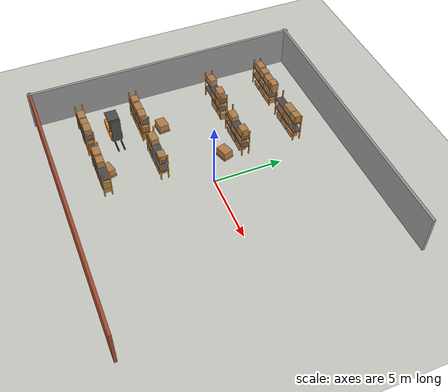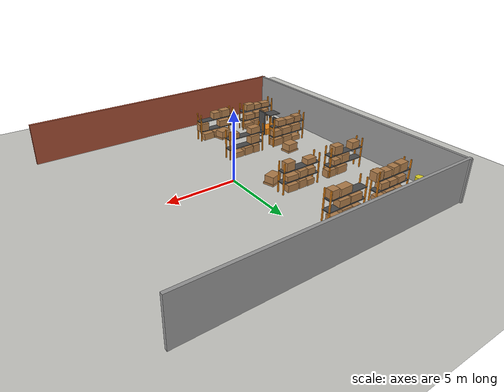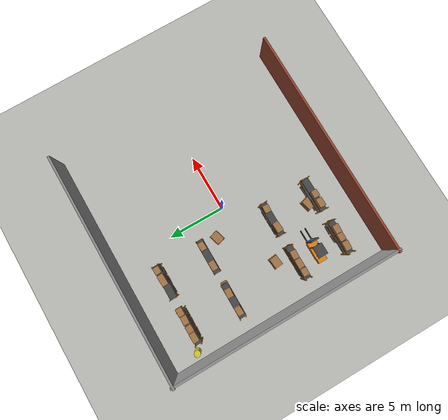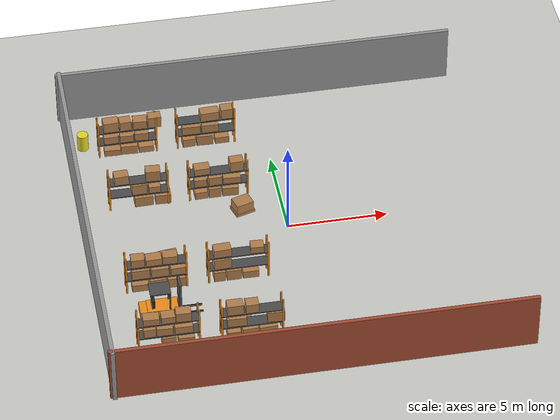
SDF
<sdf version="1.6">
 <world name="warehouse_w4_visually_degraded">
  <model name="ground_plane">
   <static>true</static>
   <link name="link">
    <collision name="collision">
     <geometry><plane><normal>0 0 1</normal><size>25 25</size></plane></geometry>
     <surface><friction><ode><mu>100</mu><mu2>50</mu2></ode></friction></surface>
    </collision>
    <visual name="visual">
     <geometry><plane><normal>0 0 1</normal><size>25 25</size></plane></geometry>
     <material>
      <script><uri>file://media/materials/scripts/gazebo.material</uri><name>Gazebo/CeilingTiled</name></script>
     </material>
    </visual>
   </link>
  </model>
  <model name="wall_north">
   <static>true</static>
   <pose>0 10 1.5 0 0 0</pose>
   <link name="link">
    <collision name="col"><geometry><box><size>20.4 0.2 3.0</size></box></geometry></collision>
    <visual name="vis">
     <geometry><box><size>20.4 0.2 3.0</size></box></geometry>
     <material>
      <script><uri>file://media/materials/scripts/gazebo.material</uri><name>Gazebo/Grey</name></script>
     </material>
    </visual>
   </link>
  </model>
  <model name="wall_south">
   <static>true</static>
   <pose>0 -10 1.5 0 0 0</pose>
   <link name="link">
    <collision name="col"><geometry><box><size>20.4 0.2 3.0</size></box></geometry></collision>
    <visual name="vis">
     <geometry><box><size>20.4 0.2 3.0</size></box></geometry>
     <material>
      <script><uri>file://media/materials/scripts/gazebo.material</uri><name>Gazebo/Bricks</name></script>
     </material>
    </visual>
   </link>
  </model>
  <model name="wall_west">
   <static>true</static>
   <pose>-10 0 1.5 0 0 1.5708</pose>
   <link name="link">
    <collision name="col"><geometry><box><size>20.4 0.2 3.0</size></box></geometry></collision>
    <visual name="vis">
     <geometry><box><size>20.4 0.2 3.0</size></box></geometry>
     <material>
      <script><uri>file://media/materials/scripts/gazebo.material</uri><name>Gazebo/Grey</name></script>
     </material>
    </visual>
   </link>
  </model>
  <model name="rack_r1_a">
   <static>true</static>
   <pose>-7 7 0 0 0 0</pose>
   <link name="link">
    <collision name="col">
     <pose>0 0 1.1 0 0 0</pose>
     <geometry><box><size>3.0 0.6 2.2</size></box></geometry>
    </collision>
    <visual name="up_-1-0">
     <pose>-1.460 -0.260 1.100 0 0 0.000</pose>
     <geometry><box><size>0.080 0.080 2.200</size></box></geometry>
     <material>
      <script><uri>file://media/materials/scripts/gazebo.material</uri><name>Gazebo/Orange</name></script>
     </material>
    </visual>
    <visual name="up_-1+0">
     <pose>-1.460 0.260 1.100 0 0 0.000</pose>
     <geometry><box><size>0.080 0.080 2.200</size></box></geometry>
     <material>
      <script><uri>file://media/materials/scripts/gazebo.material</uri><name>Gazebo/Orange</name></script>
     </material>
    </visual>
    <visual name="up_+1-0">
     <pose>1.460 -0.260 1.100 0 0 0.000</pose>
     <geometry><box><size>0.080 0.080 2.200</size></box></geometry>
     <material>
      <script><uri>file://media/materials/scripts/gazebo.material</uri><name>Gazebo/Orange</name></script>
     </material>
    </visual>
    <visual name="up_+1+0">
     <pose>1.460 0.260 1.100 0 0 0.000</pose>
     <geometry><box><size>0.080 0.080 2.200</size></box></geometry>
     <material>
      <script><uri>file://media/materials/scripts/gazebo.material</uri><name>Gazebo/Orange</name></script>
     </material>
    </visual>
    <visual name="s1">
     <pose>0.000 0.000 0.780 0 0 0.000</pose>
     <geometry><box><size>3.000 0.600 0.060</size></box></geometry>
     <material>
      <script><uri>file://media/materials/scripts/gazebo.material</uri><name>Gazebo/DarkGrey</name></script>
     </material>
    </visual>
    <visual name="s2">
     <pose>0.000 0.000 1.550 0 0 0.000</pose>
     <geometry><box><size>3.000 0.600 0.060</size></box></geometry>
     <material>
      <script><uri>file://media/materials/scripts/gazebo.material</uri><name>Gazebo/DarkGrey</name></script>
     </material>
    </visual>
    <visual name="box_f0">
     <pose>-0.797 0.000 0.178 0 0 -0.033</pose>
     <geometry><box><size>0.806 0.520 0.357</size></box></geometry>
     <material>
      <script><uri>file://media/materials/scripts/gazebo.material</uri><name>Gazebo/WoodPallet</name></script>
     </material>
    </visual>
    <visual name="box_f1">
     <pose>0.077 0.000 0.249 0 0 -0.056</pose>
     <geometry><box><size>0.846 0.520 0.497</size></box></geometry>
     <material>
      <script><uri>file://media/materials/scripts/gazebo.material</uri><name>Gazebo/WoodPallet</name></script>
     </material>
    </visual>
    <visual name="box_f2">
     <pose>0.934 0.000 0.179 0 0 0.018</pose>
     <geometry><box><size>0.752 0.520 0.357</size></box></geometry>
     <material>
      <script><uri>file://media/materials/scripts/gazebo.material</uri><name>Gazebo/WoodPallet</name></script>
     </material>
    </visual>
    <visual name="box_a0">
     <pose>-0.835 0.000 1.023 0 0 0.031</pose>
     <geometry><box><size>0.730 0.520 0.425</size></box></geometry>
     <material>
      <script><uri>file://media/materials/scripts/gazebo.material</uri><name>Gazebo/WoodPallet</name></script>
     </material>
    </visual>
    <visual name="box_a1">
     <pose>-0.031 0.000 1.006 0 0 -0.020</pose>
     <geometry><box><size>0.686 0.520 0.392</size></box></geometry>
     <material>
      <script><uri>file://media/materials/scripts/gazebo.material</uri><name>Gazebo/WoodPallet</name></script>
     </material>
    </visual>
    <visual name="box_a2">
     <pose>0.729 0.000 1.031 0 0 -0.055</pose>
     <geometry><box><size>0.694 0.520 0.443</size></box></geometry>
     <material>
      <script><uri>file://media/materials/scripts/gazebo.material</uri><name>Gazebo/Wood</name></script>
     </material>
    </visual>
    <visual name="box_b0">
     <pose>-0.815 0.000 1.867 0 0 0.043</pose>
     <geometry><box><size>0.771 0.520 0.574</size></box></geometry>
     <material>
      <script><uri>file://media/materials/scripts/gazebo.material</uri><name>Gazebo/WoodPallet</name></script>
     </material>
    </visual>
    <visual name="box_b1">
     <pose>-0.085 0.000 1.844 0 0 0.058</pose>
     <geometry><box><size>0.578 0.520 0.529</size></box></geometry>
     <material>
      <script><uri>file://media/materials/scripts/gazebo.material</uri><name>Gazebo/WoodPallet</name></script>
     </material>
    </visual>
    <visual name="box_b2">
     <pose>0.664 0.000 1.816 0 0 -0.040</pose>
     <geometry><box><size>0.702 0.520 0.472</size></box></geometry>
     <material>
      <script><uri>file://media/materials/scripts/gazebo.material</uri><name>Gazebo/Wood</name></script>
     </material>
    </visual>
    <visual name="box_b3">
     <pose>1.401 0.000 1.881 0 0 0.013</pose>
     <geometry><box><size>0.657 0.520 0.603</size></box></geometry>
     <material>
      <script><uri>file://media/materials/scripts/gazebo.material</uri><name>Gazebo/WoodPallet</name></script>
     </material>
    </visual>
   </link>
  </model>
  <model name="rack_r1_b">
   <static>true</static>
   <pose>-3 7 0 0 0 0</pose>
   <link name="link">
    <collision name="col">
     <pose>0 0 1.1 0 0 0</pose>
     <geometry><box><size>3.0 0.6 2.2</size></box></geometry>
    </collision>
    <visual name="up_-1-0">
     <pose>-1.460 -0.260 1.100 0 0 0.000</pose>
     <geometry><box><size>0.080 0.080 2.200</size></box></geometry>
     <material>
      <script><uri>file://media/materials/scripts/gazebo.material</uri><name>Gazebo/Orange</name></script>
     </material>
    </visual>
    <visual name="up_-1+0">
     <pose>-1.460 0.260 1.100 0 0 0.000</pose>
     <geometry><box><size>0.080 0.080 2.200</size></box></geometry>
     <material>
      <script><uri>file://media/materials/scripts/gazebo.material</uri><name>Gazebo/Orange</name></script>
     </material>
    </visual>
    <visual name="up_+1-0">
     <pose>1.460 -0.260 1.100 0 0 0.000</pose>
     <geometry><box><size>0.080 0.080 2.200</size></box></geometry>
     <material>
      <script><uri>file://media/materials/scripts/gazebo.material</uri><name>Gazebo/Orange</name></script>
     </material>
    </visual>
    <visual name="up_+1+0">
     <pose>1.460 0.260 1.100 0 0 0.000</pose>
     <geometry><box><size>0.080 0.080 2.200</size></box></geometry>
     <material>
      <script><uri>file://media/materials/scripts/gazebo.material</uri><name>Gazebo/Orange</name></script>
     </material>
    </visual>
    <visual name="s1">
     <pose>0.000 0.000 0.780 0 0 0.000</pose>
     <geometry><box><size>3.000 0.600 0.060</size></box></geometry>
     <material>
      <script><uri>file://media/materials/scripts/gazebo.material</uri><name>Gazebo/DarkGrey</name></script>
     </material>
    </visual>
    <visual name="s2">
     <pose>0.000 0.000 1.550 0 0 0.000</pose>
     <geometry><box><size>3.000 0.600 0.060</size></box></geometry>
     <material>
      <script><uri>file://media/materials/scripts/gazebo.material</uri><name>Gazebo/DarkGrey</name></script>
     </material>
    </visual>
    <visual name="box_f0">
     <pose>-0.876 0.000 0.237 0 0 0.051</pose>
     <geometry><box><size>0.648 0.520 0.475</size></box></geometry>
     <material>
      <script><uri>file://media/materials/scripts/gazebo.material</uri><name>Gazebo/WoodPallet</name></script>
     </material>
    </visual>
    <visual name="box_f1">
     <pose>-0.056 0.000 0.289 0 0 -0.033</pose>
     <geometry><box><size>0.824 0.520 0.578</size></box></geometry>
     <material>
      <script><uri>file://media/materials/scripts/gazebo.material</uri><name>Gazebo/WoodPallet</name></script>
     </material>
    </visual>
    <visual name="box_f2">
     <pose>0.816 0.000 0.184 0 0 0.008</pose>
     <geometry><box><size>0.710 0.520 0.368</size></box></geometry>
     <material>
      <script><uri>file://media/materials/scripts/gazebo.material</uri><name>Gazebo/WoodPallet</name></script>
     </material>
    </visual>
    <visual name="box_a0">
     <pose>-0.742 0.000 1.047 0 0 -0.030</pose>
     <geometry><box><size>0.916 0.520 0.474</size></box></geometry>
     <material>
      <script><uri>file://media/materials/scripts/gazebo.material</uri><name>Gazebo/WoodPallet</name></script>
     </material>
    </visual>
    <visual name="box_a1">
     <pose>0.223 0.000 1.043 0 0 -0.017</pose>
     <geometry><box><size>0.849 0.520 0.466</size></box></geometry>
     <material>
      <script><uri>file://media/materials/scripts/gazebo.material</uri><name>Gazebo/WoodPallet</name></script>
     </material>
    </visual>
    <visual name="box_b1">
     <pose>0.212 0.000 1.826 0 0 0.043</pose>
     <geometry><box><size>0.948 0.520 0.493</size></box></geometry>
     <material>
      <script><uri>file://media/materials/scripts/gazebo.material</uri><name>Gazebo/WoodPallet</name></script>
     </material>
    </visual>
    <visual name="box_b2">
     <pose>1.078 0.000 1.874 0 0 0.032</pose>
     <geometry><box><size>0.596 0.520 0.589</size></box></geometry>
     <material>
      <script><uri>file://media/materials/scripts/gazebo.material</uri><name>Gazebo/Wood</name></script>
     </material>
    </visual>
   </link>
  </model>
  <model name="rack_r2_a">
   <static>true</static>
   <pose>-7 3 0 0 0 0</pose>
   <link name="link">
    <collision name="col">
     <pose>0 0 1.1 0 0 0</pose>
     <geometry><box><size>3.0 0.6 2.2</size></box></geometry>
    </collision>
    <visual name="up_-1-0">
     <pose>-1.460 -0.260 1.100 0 0 0.000</pose>
     <geometry><box><size>0.080 0.080 2.200</size></box></geometry>
     <material>
      <script><uri>file://media/materials/scripts/gazebo.material</uri><name>Gazebo/Orange</name></script>
     </material>
    </visual>
    <visual name="up_-1+0">
     <pose>-1.460 0.260 1.100 0 0 0.000</pose>
     <geometry><box><size>0.080 0.080 2.200</size></box></geometry>
     <material>
      <script><uri>file://media/materials/scripts/gazebo.material</uri><name>Gazebo/Orange</name></script>
     </material>
    </visual>
    <visual name="up_+1-0">
     <pose>1.460 -0.260 1.100 0 0 0.000</pose>
     <geometry><box><size>0.080 0.080 2.200</size></box></geometry>
     <material>
      <script><uri>file://media/materials/scripts/gazebo.material</uri><name>Gazebo/Orange</name></script>
     </material>
    </visual>
    <visual name="up_+1+0">
     <pose>1.460 0.260 1.100 0 0 0.000</pose>
     <geometry><box><size>0.080 0.080 2.200</size></box></geometry>
     <material>
      <script><uri>file://media/materials/scripts/gazebo.material</uri><name>Gazebo/Orange</name></script>
     </material>
    </visual>
    <visual name="s1">
     <pose>0.000 0.000 0.780 0 0 0.000</pose>
     <geometry><box><size>3.000 0.600 0.060</size></box></geometry>
     <material>
      <script><uri>file://media/materials/scripts/gazebo.material</uri><name>Gazebo/DarkGrey</name></script>
     </material>
    </visual>
    <visual name="s2">
     <pose>0.000 0.000 1.550 0 0 0.000</pose>
     <geometry><box><size>3.000 0.600 0.060</size></box></geometry>
     <material>
      <script><uri>file://media/materials/scripts/gazebo.material</uri><name>Gazebo/DarkGrey</name></script>
     </material>
    </visual>
    <visual name="box_f1">
     <pose>0.243 0.000 0.281 0 0 0.024</pose>
     <geometry><box><size>0.921 0.520 0.562</size></box></geometry>
     <material>
      <script><uri>file://media/materials/scripts/gazebo.material</uri><name>Gazebo/WoodPallet</name></script>
     </material>
    </visual>
    <visual name="box_f2">
     <pose>1.209 0.000 0.272 0 0 -0.024</pose>
     <geometry><box><size>0.772 0.520 0.544</size></box></geometry>
     <material>
      <script><uri>file://media/materials/scripts/gazebo.material</uri><name>Gazebo/WoodPallet</name></script>
     </material>
    </visual>
    <visual name="box_a1">
     <pose>0.029 0.000 1.100 0 0 0.055</pose>
     <geometry><box><size>0.751 0.520 0.580</size></box></geometry>
     <material>
      <script><uri>file://media/materials/scripts/gazebo.material</uri><name>Gazebo/WoodPallet</name></script>
     </material>
    </visual>
    <visual name="box_a2">
     <pose>0.802 0.000 0.994 0 0 -0.012</pose>
     <geometry><box><size>0.577 0.520 0.368</size></box></geometry>
     <material>
      <script><uri>file://media/materials/scripts/gazebo.material</uri><name>Gazebo/WoodPallet</name></script>
     </material>
    </visual>
    <visual name="box_b0">
     <pose>-0.841 0.000 1.834 0 0 0.052</pose>
     <geometry><box><size>0.718 0.520 0.508</size></box></geometry>
     <material>
      <script><uri>file://media/materials/scripts/gazebo.material</uri><name>Gazebo/WoodPallet</name></script>
     </material>
    </visual>
    <visual name="box_b2">
     <pose>0.745 0.000 1.880 0 0 -0.059</pose>
     <geometry><box><size>0.733 0.520 0.601</size></box></geometry>
     <material>
      <script><uri>file://media/materials/scripts/gazebo.material</uri><name>Gazebo/WoodPallet</name></script>
     </material>
    </visual>
   </link>
  </model>
  <model name="rack_r2_b">
   <static>true</static>
   <pose>-3 3 0 0 0 0</pose>
   <link name="link">
    <collision name="col">
     <pose>0 0 1.1 0 0 0</pose>
     <geometry><box><size>3.0 0.6 2.2</size></box></geometry>
    </collision>
    <visual name="up_-1-0">
     <pose>-1.460 -0.260 1.100 0 0 0.000</pose>
     <geometry><box><size>0.080 0.080 2.200</size></box></geometry>
     <material>
      <script><uri>file://media/materials/scripts/gazebo.material</uri><name>Gazebo/Orange</name></script>
     </material>
    </visual>
    <visual name="up_-1+0">
     <pose>-1.460 0.260 1.100 0 0 0.000</pose>
     <geometry><box><size>0.080 0.080 2.200</size></box></geometry>
     <material>
      <script><uri>file://media/materials/scripts/gazebo.material</uri><name>Gazebo/Orange</name></script>
     </material>
    </visual>
    <visual name="up_+1-0">
     <pose>1.460 -0.260 1.100 0 0 0.000</pose>
     <geometry><box><size>0.080 0.080 2.200</size></box></geometry>
     <material>
      <script><uri>file://media/materials/scripts/gazebo.material</uri><name>Gazebo/Orange</name></script>
     </material>
    </visual>
    <visual name="up_+1+0">
     <pose>1.460 0.260 1.100 0 0 0.000</pose>
     <geometry><box><size>0.080 0.080 2.200</size></box></geometry>
     <material>
      <script><uri>file://media/materials/scripts/gazebo.material</uri><name>Gazebo/Orange</name></script>
     </material>
    </visual>
    <visual name="s1">
     <pose>0.000 0.000 0.780 0 0 0.000</pose>
     <geometry><box><size>3.000 0.600 0.060</size></box></geometry>
     <material>
      <script><uri>file://media/materials/scripts/gazebo.material</uri><name>Gazebo/DarkGrey</name></script>
     </material>
    </visual>
    <visual name="s2">
     <pose>0.000 0.000 1.550 0 0 0.000</pose>
     <geometry><box><size>3.000 0.600 0.060</size></box></geometry>
     <material>
      <script><uri>file://media/materials/scripts/gazebo.material</uri><name>Gazebo/DarkGrey</name></script>
     </material>
    </visual>
    <visual name="box_f0">
     <pose>-0.882 0.000 0.211 0 0 0.046</pose>
     <geometry><box><size>0.635 0.520 0.422</size></box></geometry>
     <material>
      <script><uri>file://media/materials/scripts/gazebo.material</uri><name>Gazebo/WoodPallet</name></script>
     </material>
    </visual>
    <visual name="box_f1">
     <pose>-0.189 0.000 0.288 0 0 0.013</pose>
     <geometry><box><size>0.613 0.520 0.575</size></box></geometry>
     <material>
      <script><uri>file://media/materials/scripts/gazebo.material</uri><name>Gazebo/WoodPallet</name></script>
     </material>
    </visual>
    <visual name="box_f2">
     <pose>0.609 0.000 0.250 0 0 -0.048</pose>
     <geometry><box><size>0.817 0.520 0.500</size></box></geometry>
     <material>
      <script><uri>file://media/materials/scripts/gazebo.material</uri><name>Gazebo/WoodPallet</name></script>
     </material>
    </visual>
    <visual name="box_a0">
     <pose>-0.894 0.000 1.023 0 0 -0.019</pose>
     <geometry><box><size>0.612 0.520 0.426</size></box></geometry>
     <material>
      <script><uri>file://media/materials/scripts/gazebo.material</uri><name>Gazebo/WoodPallet</name></script>
     </material>
    </visual>
    <visual name="box_a1">
     <pose>-0.169 0.000 1.051 0 0 0.042</pose>
     <geometry><box><size>0.656 0.520 0.482</size></box></geometry>
     <material>
      <script><uri>file://media/materials/scripts/gazebo.material</uri><name>Gazebo/WoodPallet</name></script>
     </material>
    </visual>
    <visual name="box_a2">
     <pose>0.690 0.000 0.991 0 0 -0.044</pose>
     <geometry><box><size>0.882 0.520 0.362</size></box></geometry>
     <material>
      <script><uri>file://media/materials/scripts/gazebo.material</uri><name>Gazebo/Wood</name></script>
     </material>
    </visual>
    <visual name="box_b0">
     <pose>-0.813 0.000 1.770 0 0 0.023</pose>
     <geometry><box><size>0.774 0.520 0.380</size></box></geometry>
     <material>
      <script><uri>file://media/materials/scripts/gazebo.material</uri><name>Gazebo/WoodPallet</name></script>
     </material>
    </visual>
    <visual name="box_b2">
     <pose>0.929 0.000 1.876 0 0 0.043</pose>
     <geometry><box><size>0.673 0.520 0.593</size></box></geometry>
     <material>
      <script><uri>file://media/materials/scripts/gazebo.material</uri><name>Gazebo/Wood</name></script>
     </material>
    </visual>
   </link>
  </model>
  <model name="rack_r3_a">
   <static>true</static>
   <pose>-7 -3 0 0 0 0</pose>
   <link name="link">
    <collision name="col">
     <pose>0 0 1.1 0 0 0</pose>
     <geometry><box><size>3.0 0.6 2.2</size></box></geometry>
    </collision>
    <visual name="up_-1-0">
     <pose>-1.460 -0.260 1.100 0 0 0.000</pose>
     <geometry><box><size>0.080 0.080 2.200</size></box></geometry>
     <material>
      <script><uri>file://media/materials/scripts/gazebo.material</uri><name>Gazebo/Orange</name></script>
     </material>
    </visual>
    <visual name="up_-1+0">
     <pose>-1.460 0.260 1.100 0 0 0.000</pose>
     <geometry><box><size>0.080 0.080 2.200</size></box></geometry>
     <material>
      <script><uri>file://media/materials/scripts/gazebo.material</uri><name>Gazebo/Orange</name></script>
     </material>
    </visual>
    <visual name="up_+1-0">
     <pose>1.460 -0.260 1.100 0 0 0.000</pose>
     <geometry><box><size>0.080 0.080 2.200</size></box></geometry>
     <material>
      <script><uri>file://media/materials/scripts/gazebo.material</uri><name>Gazebo/Orange</name></script>
     </material>
    </visual>
    <visual name="up_+1+0">
     <pose>1.460 0.260 1.100 0 0 0.000</pose>
     <geometry><box><size>0.080 0.080 2.200</size></box></geometry>
     <material>
      <script><uri>file://media/materials/scripts/gazebo.material</uri><name>Gazebo/Orange</name></script>
     </material>
    </visual>
    <visual name="s1">
     <pose>0.000 0.000 0.780 0 0 0.000</pose>
     <geometry><box><size>3.000 0.600 0.060</size></box></geometry>
     <material>
      <script><uri>file://media/materials/scripts/gazebo.material</uri><name>Gazebo/DarkGrey</name></script>
     </material>
    </visual>
    <visual name="s2">
     <pose>0.000 0.000 1.550 0 0 0.000</pose>
     <geometry><box><size>3.000 0.600 0.060</size></box></geometry>
     <material>
      <script><uri>file://media/materials/scripts/gazebo.material</uri><name>Gazebo/DarkGrey</name></script>
     </material>
    </visual>
    <visual name="box_f0">
     <pose>-0.799 0.000 0.201 0 0 -0.001</pose>
     <geometry><box><size>0.802 0.520 0.402</size></box></geometry>
     <material>
      <script><uri>file://media/materials/scripts/gazebo.material</uri><name>Gazebo/WoodPallet</name></script>
     </material>
    </visual>
    <visual name="box_f1">
     <pose>0.066 0.000 0.296 0 0 0.046</pose>
     <geometry><box><size>0.825 0.520 0.591</size></box></geometry>
     <material>
      <script><uri>file://media/materials/scripts/gazebo.material</uri><name>Gazebo/Wood</name></script>
     </material>
    </visual>
    <visual name="box_f2">
     <pose>0.972 0.000 0.269 0 0 0.007</pose>
     <geometry><box><size>0.872 0.520 0.538</size></box></geometry>
     <material>
      <script><uri>file://media/materials/scripts/gazebo.material</uri><name>Gazebo/WoodPallet</name></script>
     </material>
    </visual>
    <visual name="box_a0">
     <pose>-0.765 0.000 1.075 0 0 0.011</pose>
     <geometry><box><size>0.871 0.520 0.530</size></box></geometry>
     <material>
      <script><uri>file://media/materials/scripts/gazebo.material</uri><name>Gazebo/Wood</name></script>
     </material>
    </visual>
    <visual name="box_a1">
     <pose>0.178 0.000 1.053 0 0 0.006</pose>
     <geometry><box><size>0.838 0.520 0.486</size></box></geometry>
     <material>
      <script><uri>file://media/materials/scripts/gazebo.material</uri><name>Gazebo/WoodPallet</name></script>
     </material>
    </visual>
    <visual name="box_a2">
     <pose>1.067 0.000 1.020 0 0 0.017</pose>
     <geometry><box><size>0.740 0.520 0.420</size></box></geometry>
     <material>
      <script><uri>file://media/materials/scripts/gazebo.material</uri><name>Gazebo/WoodPallet</name></script>
     </material>
    </visual>
    <visual name="box_b0">
     <pose>-0.877 0.000 1.814 0 0 -0.032</pose>
     <geometry><box><size>0.646 0.520 0.469</size></box></geometry>
     <material>
      <script><uri>file://media/materials/scripts/gazebo.material</uri><name>Gazebo/Wood</name></script>
     </material>
    </visual>
    <visual name="box_b1">
     <pose>-0.106 0.000 1.774 0 0 0.023</pose>
     <geometry><box><size>0.766 0.520 0.387</size></box></geometry>
     <material>
      <script><uri>file://media/materials/scripts/gazebo.material</uri><name>Gazebo/WoodPallet</name></script>
     </material>
    </visual>
    <visual name="box_b2">
     <pose>0.692 0.000 1.800 0 0 -0.053</pose>
     <geometry><box><size>0.716 0.520 0.439</size></box></geometry>
     <material>
      <script><uri>file://media/materials/scripts/gazebo.material</uri><name>Gazebo/Wood</name></script>
     </material>
    </visual>
   </link>
  </model>
  <model name="rack_r3_b">
   <static>true</static>
   <pose>-3 -3 0 0 0 0</pose>
   <link name="link">
    <collision name="col">
     <pose>0 0 1.1 0 0 0</pose>
     <geometry><box><size>3.0 0.6 2.2</size></box></geometry>
    </collision>
    <visual name="up_-1-0">
     <pose>-1.460 -0.260 1.100 0 0 0.000</pose>
     <geometry><box><size>0.080 0.080 2.200</size></box></geometry>
     <material>
      <script><uri>file://media/materials/scripts/gazebo.material</uri><name>Gazebo/Orange</name></script>
     </material>
    </visual>
    <visual name="up_-1+0">
     <pose>-1.460 0.260 1.100 0 0 0.000</pose>
     <geometry><box><size>0.080 0.080 2.200</size></box></geometry>
     <material>
      <script><uri>file://media/materials/scripts/gazebo.material</uri><name>Gazebo/Orange</name></script>
     </material>
    </visual>
    <visual name="up_+1-0">
     <pose>1.460 -0.260 1.100 0 0 0.000</pose>
     <geometry><box><size>0.080 0.080 2.200</size></box></geometry>
     <material>
      <script><uri>file://media/materials/scripts/gazebo.material</uri><name>Gazebo/Orange</name></script>
     </material>
    </visual>
    <visual name="up_+1+0">
     <pose>1.460 0.260 1.100 0 0 0.000</pose>
     <geometry><box><size>0.080 0.080 2.200</size></box></geometry>
     <material>
      <script><uri>file://media/materials/scripts/gazebo.material</uri><name>Gazebo/Orange</name></script>
     </material>
    </visual>
    <visual name="s1">
     <pose>0.000 0.000 0.780 0 0 0.000</pose>
     <geometry><box><size>3.000 0.600 0.060</size></box></geometry>
     <material>
      <script><uri>file://media/materials/scripts/gazebo.material</uri><name>Gazebo/DarkGrey</name></script>
     </material>
    </visual>
    <visual name="s2">
     <pose>0.000 0.000 1.550 0 0 0.000</pose>
     <geometry><box><size>3.000 0.600 0.060</size></box></geometry>
     <material>
      <script><uri>file://media/materials/scripts/gazebo.material</uri><name>Gazebo/DarkGrey</name></script>
     </material>
    </visual>
    <visual name="box_f0">
     <pose>-0.921 0.000 0.294 0 0 -0.003</pose>
     <geometry><box><size>0.558 0.520 0.588</size></box></geometry>
     <material>
      <script><uri>file://media/materials/scripts/gazebo.material</uri><name>Gazebo/Wood</name></script>
     </material>
    </visual>
    <visual name="box_f1">
     <pose>-0.225 0.000 0.295 0 0 0.005</pose>
     <geometry><box><size>0.706 0.520 0.591</size></box></geometry>
     <material>
      <script><uri>file://media/materials/scripts/gazebo.material</uri><name>Gazebo/WoodPallet</name></script>
     </material>
    </visual>
    <visual name="box_f2">
     <pose>0.607 0.000 0.205 0 0 -0.008</pose>
     <geometry><box><size>0.791 0.520 0.410</size></box></geometry>
     <material>
      <script><uri>file://media/materials/scripts/gazebo.material</uri><name>Gazebo/WoodPallet</name></script>
     </material>
    </visual>
    <visual name="box_a0">
     <pose>-0.780 0.000 1.098 0 0 0.058</pose>
     <geometry><box><size>0.840 0.520 0.577</size></box></geometry>
     <material>
      <script><uri>file://media/materials/scripts/gazebo.material</uri><name>Gazebo/WoodPallet</name></script>
     </material>
    </visual>
    <visual name="box_b0">
     <pose>-0.773 0.000 1.806 0 0 0.040</pose>
     <geometry><box><size>0.854 0.520 0.452</size></box></geometry>
     <material>
      <script><uri>file://media/materials/scripts/gazebo.material</uri><name>Gazebo/Wood</name></script>
     </material>
    </visual>
    <visual name="box_b2">
     <pose>0.935 0.000 1.764 0 0 -0.055</pose>
     <geometry><box><size>0.640 0.520 0.369</size></box></geometry>
     <material>
      <script><uri>file://media/materials/scripts/gazebo.material</uri><name>Gazebo/WoodPallet</name></script>
     </material>
    </visual>
   </link>
  </model>
  <model name="rack_r4_a">
   <static>true</static>
   <pose>-7 -7 0 0 0 0</pose>
   <link name="link">
    <collision name="col">
     <pose>0 0 1.1 0 0 0</pose>
     <geometry><box><size>3.0 0.6 2.2</size></box></geometry>
    </collision>
    <visual name="up_-1-0">
     <pose>-1.460 -0.260 1.100 0 0 0.000</pose>
     <geometry><box><size>0.080 0.080 2.200</size></box></geometry>
     <material>
      <script><uri>file://media/materials/scripts/gazebo.material</uri><name>Gazebo/Orange</name></script>
     </material>
    </visual>
    <visual name="up_-1+0">
     <pose>-1.460 0.260 1.100 0 0 0.000</pose>
     <geometry><box><size>0.080 0.080 2.200</size></box></geometry>
     <material>
      <script><uri>file://media/materials/scripts/gazebo.material</uri><name>Gazebo/Orange</name></script>
     </material>
    </visual>
    <visual name="up_+1-0">
     <pose>1.460 -0.260 1.100 0 0 0.000</pose>
     <geometry><box><size>0.080 0.080 2.200</size></box></geometry>
     <material>
      <script><uri>file://media/materials/scripts/gazebo.material</uri><name>Gazebo/Orange</name></script>
     </material>
    </visual>
    <visual name="up_+1+0">
     <pose>1.460 0.260 1.100 0 0 0.000</pose>
     <geometry><box><size>0.080 0.080 2.200</size></box></geometry>
     <material>
      <script><uri>file://media/materials/scripts/gazebo.material</uri><name>Gazebo/Orange</name></script>
     </material>
    </visual>
    <visual name="s1">
     <pose>0.000 0.000 0.780 0 0 0.000</pose>
     <geometry><box><size>3.000 0.600 0.060</size></box></geometry>
     <material>
      <script><uri>file://media/materials/scripts/gazebo.material</uri><name>Gazebo/DarkGrey</name></script>
     </material>
    </visual>
    <visual name="s2">
     <pose>0.000 0.000 1.550 0 0 0.000</pose>
     <geometry><box><size>3.000 0.600 0.060</size></box></geometry>
     <material>
      <script><uri>file://media/materials/scripts/gazebo.material</uri><name>Gazebo/DarkGrey</name></script>
     </material>
    </visual>
    <visual name="box_f1">
     <pose>0.011 0.000 0.302 0 0 0.030</pose>
     <geometry><box><size>0.667 0.520 0.605</size></box></geometry>
     <material>
      <script><uri>file://media/materials/scripts/gazebo.material</uri><name>Gazebo/WoodPallet</name></script>
     </material>
    </visual>
    <visual name="box_f2">
     <pose>0.844 0.000 0.238 0 0 -0.038</pose>
     <geometry><box><size>0.780 0.520 0.477</size></box></geometry>
     <material>
      <script><uri>file://media/materials/scripts/gazebo.material</uri><name>Gazebo/WoodPallet</name></script>
     </material>
    </visual>
    <visual name="box_a0">
     <pose>-0.912 0.000 1.051 0 0 0.022</pose>
     <geometry><box><size>0.576 0.520 0.483</size></box></geometry>
     <material>
      <script><uri>file://media/materials/scripts/gazebo.material</uri><name>Gazebo/WoodPallet</name></script>
     </material>
    </visual>
    <visual name="box_a1">
     <pose>-0.184 0.000 1.026 0 0 -0.046</pose>
     <geometry><box><size>0.775 0.520 0.432</size></box></geometry>
     <material>
      <script><uri>file://media/materials/scripts/gazebo.material</uri><name>Gazebo/Wood</name></script>
     </material>
    </visual>
    <visual name="box_a2">
     <pose>0.725 0.000 1.015 0 0 -0.006</pose>
     <geometry><box><size>0.866 0.520 0.411</size></box></geometry>
     <material>
      <script><uri>file://media/materials/scripts/gazebo.material</uri><name>Gazebo/Wood</name></script>
     </material>
    </visual>
    <visual name="box_b0">
     <pose>-0.811 0.000 1.763 0 0 -0.048</pose>
     <geometry><box><size>0.777 0.520 0.366</size></box></geometry>
     <material>
      <script><uri>file://media/materials/scripts/gazebo.material</uri><name>Gazebo/WoodPallet</name></script>
     </material>
    </visual>
    <visual name="box_b1">
     <pose>-0.005 0.000 1.766 0 0 0.006</pose>
     <geometry><box><size>0.656 0.520 0.372</size></box></geometry>
     <material>
      <script><uri>file://media/materials/scripts/gazebo.material</uri><name>Gazebo/WoodPallet</name></script>
     </material>
    </visual>
    <visual name="box_b2">
     <pose>0.729 0.000 1.835 0 0 -0.032</pose>
     <geometry><box><size>0.730 0.520 0.510</size></box></geometry>
     <material>
      <script><uri>file://media/materials/scripts/gazebo.material</uri><name>Gazebo/WoodPallet</name></script>
     </material>
    </visual>
   </link>
  </model>
  <model name="rack_r4_b">
   <static>true</static>
   <pose>-3 -7 0 0 0 0</pose>
   <link name="link">
    <collision name="col">
     <pose>0 0 1.1 0 0 0</pose>
     <geometry><box><size>3.0 0.6 2.2</size></box></geometry>
    </collision>
    <visual name="up_-1-0">
     <pose>-1.460 -0.260 1.100 0 0 0.000</pose>
     <geometry><box><size>0.080 0.080 2.200</size></box></geometry>
     <material>
      <script><uri>file://media/materials/scripts/gazebo.material</uri><name>Gazebo/Orange</name></script>
     </material>
    </visual>
    <visual name="up_-1+0">
     <pose>-1.460 0.260 1.100 0 0 0.000</pose>
     <geometry><box><size>0.080 0.080 2.200</size></box></geometry>
     <material>
      <script><uri>file://media/materials/scripts/gazebo.material</uri><name>Gazebo/Orange</name></script>
     </material>
    </visual>
    <visual name="up_+1-0">
     <pose>1.460 -0.260 1.100 0 0 0.000</pose>
     <geometry><box><size>0.080 0.080 2.200</size></box></geometry>
     <material>
      <script><uri>file://media/materials/scripts/gazebo.material</uri><name>Gazebo/Orange</name></script>
     </material>
    </visual>
    <visual name="up_+1+0">
     <pose>1.460 0.260 1.100 0 0 0.000</pose>
     <geometry><box><size>0.080 0.080 2.200</size></box></geometry>
     <material>
      <script><uri>file://media/materials/scripts/gazebo.material</uri><name>Gazebo/Orange</name></script>
     </material>
    </visual>
    <visual name="s1">
     <pose>0.000 0.000 0.780 0 0 0.000</pose>
     <geometry><box><size>3.000 0.600 0.060</size></box></geometry>
     <material>
      <script><uri>file://media/materials/scripts/gazebo.material</uri><name>Gazebo/DarkGrey</name></script>
     </material>
    </visual>
    <visual name="s2">
     <pose>0.000 0.000 1.550 0 0 0.000</pose>
     <geometry><box><size>3.000 0.600 0.060</size></box></geometry>
     <material>
      <script><uri>file://media/materials/scripts/gazebo.material</uri><name>Gazebo/DarkGrey</name></script>
     </material>
    </visual>
    <visual name="box_f0">
     <pose>-0.878 0.000 0.211 0 0 0.011</pose>
     <geometry><box><size>0.643 0.520 0.421</size></box></geometry>
     <material>
      <script><uri>file://media/materials/scripts/gazebo.material</uri><name>Gazebo/WoodPallet</name></script>
     </material>
    </visual>
    <visual name="box_f1">
     <pose>-0.099 0.000 0.262 0 0 0.039</pose>
     <geometry><box><size>0.768 0.520 0.525</size></box></geometry>
     <material>
      <script><uri>file://media/materials/scripts/gazebo.material</uri><name>Gazebo/WoodPallet</name></script>
     </material>
    </visual>
    <visual name="box_f2">
     <pose>0.764 0.000 0.255 0 0 0.051</pose>
     <geometry><box><size>0.867 0.520 0.511</size></box></geometry>
     <material>
      <script><uri>file://media/materials/scripts/gazebo.material</uri><name>Gazebo/Wood</name></script>
     </material>
    </visual>
    <visual name="box_a0">
     <pose>-0.736 0.000 1.053 0 0 -0.050</pose>
     <geometry><box><size>0.927 0.520 0.485</size></box></geometry>
     <material>
      <script><uri>file://media/materials/scripts/gazebo.material</uri><name>Gazebo/WoodPallet</name></script>
     </material>
    </visual>
    <visual name="box_a2">
     <pose>1.150 0.000 1.101 0 0 -0.058</pose>
     <geometry><box><size>0.820 0.520 0.582</size></box></geometry>
     <material>
      <script><uri>file://media/materials/scripts/gazebo.material</uri><name>Gazebo/WoodPallet</name></script>
     </material>
    </visual>
    <visual name="box_b0">
     <pose>-0.810 0.000 1.858 0 0 0.002</pose>
     <geometry><box><size>0.780 0.520 0.556</size></box></geometry>
     <material>
      <script><uri>file://media/materials/scripts/gazebo.material</uri><name>Gazebo/Wood</name></script>
     </material>
    </visual>
    <visual name="box_b1">
     <pose>0.005 0.000 1.834 0 0 -0.001</pose>
     <geometry><box><size>0.623 0.520 0.508</size></box></geometry>
     <material>
      <script><uri>file://media/materials/scripts/gazebo.material</uri><name>Gazebo/WoodPallet</name></script>
     </material>
    </visual>
   </link>
  </model>
  <model name="pallet_0">
   <static>true</static>
   <pose>-2.0 1.6 0 0 0 0.3</pose>
   <link name="link">
    <collision name="col">
     <pose>0 0 0.25 0 0 0</pose>
     <geometry><box><size>1.0 0.8 0.5</size></box></geometry>
    </collision>
    <visual name="base">
     <pose>0.000 0.000 0.070 0 0 0.000</pose>
     <geometry><box><size>1.000 0.800 0.140</size></box></geometry>
     <material>
      <script><uri>file://media/materials/scripts/gazebo.material</uri><name>Gazebo/WoodPallet</name></script>
     </material>
    </visual>
    <visual name="load">
     <pose>0.000 0.000 0.390 0 0 0.000</pose>
     <geometry><box><size>0.900 0.700 0.500</size></box></geometry>
     <material>
      <script><uri>file://media/materials/scripts/gazebo.material</uri><name>Gazebo/Wood</name></script>
     </material>
    </visual>
   </link>
  </model>
  <model name="pallet_2">
   <static>true</static>
   <pose>-6.2 -1.6 0 0 0 0.1</pose>
   <link name="link">
    <collision name="col">
     <pose>0 0 0.25 0 0 0</pose>
     <geometry><box><size>1.0 0.8 0.5</size></box></geometry>
    </collision>
    <visual name="base">
     <pose>0.000 0.000 0.070 0 0 0.000</pose>
     <geometry><box><size>1.000 0.800 0.140</size></box></geometry>
     <material>
      <script><uri>file://media/materials/scripts/gazebo.material</uri><name>Gazebo/WoodPallet</name></script>
     </material>
    </visual>
    <visual name="load">
     <pose>0.000 0.000 0.390 0 0 0.000</pose>
     <geometry><box><size>0.900 0.700 0.500</size></box></geometry>
     <material>
      <script><uri>file://media/materials/scripts/gazebo.material</uri><name>Gazebo/Wood</name></script>
     </material>
    </visual>
   </link>
  </model>
  <model name="pallet_5">
   <static>true</static>
   <pose>-3.4 -6.5 0 0 0 0.25</pose>
   <link name="link">
    <collision name="col">
     <pose>0 0 0.25 0 0 0</pose>
     <geometry><box><size>1.0 0.8 0.5</size></box></geometry>
    </collision>
    <visual name="base">
     <pose>0.000 0.000 0.070 0 0 0.000</pose>
     <geometry><box><size>1.000 0.800 0.140</size></box></geometry>
     <material>
      <script><uri>file://media/materials/scripts/gazebo.material</uri><name>Gazebo/WoodPallet</name></script>
     </material>
    </visual>
    <visual name="load">
     <pose>0.000 0.000 0.390 0 0 0.000</pose>
     <geometry><box><size>0.900 0.700 0.500</size></box></geometry>
     <material>
      <script><uri>file://media/materials/scripts/gazebo.material</uri><name>Gazebo/Wood</name></script>
     </material>
    </visual>
   </link>
  </model>
  <model name="drum_2">
   <static>true</static>
   <pose>-9.2 7.6 0 0 0 0</pose>
   <link name="link">
    <collision name="col">
     <pose>0 0 0.45 0 0 0</pose>
     <geometry><cylinder><radius>0.28</radius><length>0.9</length></cylinder></geometry>
    </collision>
    <visual name="vis">
     <pose>0 0 0.45 0 0 0</pose>
     <geometry><cylinder><radius>0.28</radius><length>0.9</length></cylinder></geometry>
     <material>
      <script><uri>file://media/materials/scripts/gazebo.material</uri><name>Gazebo/Yellow</name></script>
     </material>
    </visual>
   </link>
  </model>
  <model name="overview_camera">
   <static>true</static>
   <pose>0 0 17 0 1.5708 0</pose>
   <link name="link">
    <sensor name="overview" type="camera">
     <always_on>true</always_on>
     <update_rate>2</update_rate>
     <visualize>false</visualize>
     <camera name="overview">
      <horizontal_fov>1.25</horizontal_fov>
      <image><width>1280</width><height>720</height><format>R8G8B8</format></image>
      <clip><near>0.5</near><far>40</far></clip>
     </camera>
     <plugin name="overview_driver" filename="libgazebo_ros_camera.so">
      <ros><namespace>/</namespace></ros>
      <camera_name>overview</camera_name>
      <frame_name>overview_link</frame_name>
     </plugin>
    </sensor>
   </link>
  </model>
  <model name="forklift_2">
   <static>true</static>
   <pose>-7.0 -5.0 0 0 0 0</pose>
   <link name="body">
    <collision name="col">
     <pose>0.2 0 0.6 0 0 0</pose>
     <geometry><box><size>2.4 0.9 1.2</size></box></geometry>
    </collision>
    <visual name="chassis">
     <pose>0.000 0.000 0.400 0 0 0.000</pose>
     <geometry><box><size>1.500 0.850 0.500</size></box></geometry>
     <material>
      <script><uri>file://media/materials/scripts/gazebo.material</uri><name>Gazebo/Orange</name></script>
     </material>
    </visual>
    <visual name="counterweight">
     <pose>-0.850 0.000 0.400 0 0 0.000</pose>
     <geometry><box><size>0.500 0.800 0.450</size></box></geometry>
     <material>
      <script><uri>file://media/materials/scripts/gazebo.material</uri><name>Gazebo/Orange</name></script>
     </material>
    </visual>
    <visual name="mast">
     <pose>0.850 0.000 1.100 0 0 0.000</pose>
     <geometry><box><size>0.120 0.700 1.900</size></box></geometry>
     <material>
      <script><uri>file://media/materials/scripts/gazebo.material</uri><name>Gazebo/DarkGrey</name></script>
     </material>
    </visual>
    <visual name="fork_l">
     <pose>1.450 0.220 0.120 0 0 0.000</pose>
     <geometry><box><size>1.000 0.100 0.050</size></box></geometry>
     <material>
      <script><uri>file://media/materials/scripts/gazebo.material</uri><name>Gazebo/Black</name></script>
     </material>
    </visual>
    <visual name="fork_r">
     <pose>1.450 -0.220 0.120 0 0 0.000</pose>
     <geometry><box><size>1.000 0.100 0.050</size></box></geometry>
     <material>
      <script><uri>file://media/materials/scripts/gazebo.material</uri><name>Gazebo/Black</name></script>
     </material>
    </visual>
    <visual name="guard_post_l">
     <pose>0.350 0.350 1.150 0 0 0.000</pose>
     <geometry><box><size>0.070 0.070 1.000</size></box></geometry>
     <material>
      <script><uri>file://media/materials/scripts/gazebo.material</uri><name>Gazebo/DarkGrey</name></script>
     </material>
    </visual>
    <visual name="guard_post_r">
     <pose>0.350 -0.350 1.150 0 0 0.000</pose>
     <geometry><box><size>0.070 0.070 1.000</size></box></geometry>
     <material>
      <script><uri>file://media/materials/scripts/gazebo.material</uri><name>Gazebo/DarkGrey</name></script>
     </material>
    </visual>
    <visual name="roof">
     <pose>-0.100 0.000 1.700 0 0 0.000</pose>
     <geometry><box><size>1.000 0.850 0.060</size></box></geometry>
     <material>
      <script><uri>file://media/materials/scripts/gazebo.material</uri><name>Gazebo/DarkGrey</name></script>
     </material>
    </visual>
    <visual name="seatback">
     <pose>-0.450 0.000 0.950 0 0 0.000</pose>
     <geometry><box><size>0.150 0.500 0.550</size></box></geometry>
     <material>
      <script><uri>file://media/materials/scripts/gazebo.material</uri><name>Gazebo/Black</name></script>
     </material>
    </visual>
   </link>
  </model>
 </world>
</sdf>
